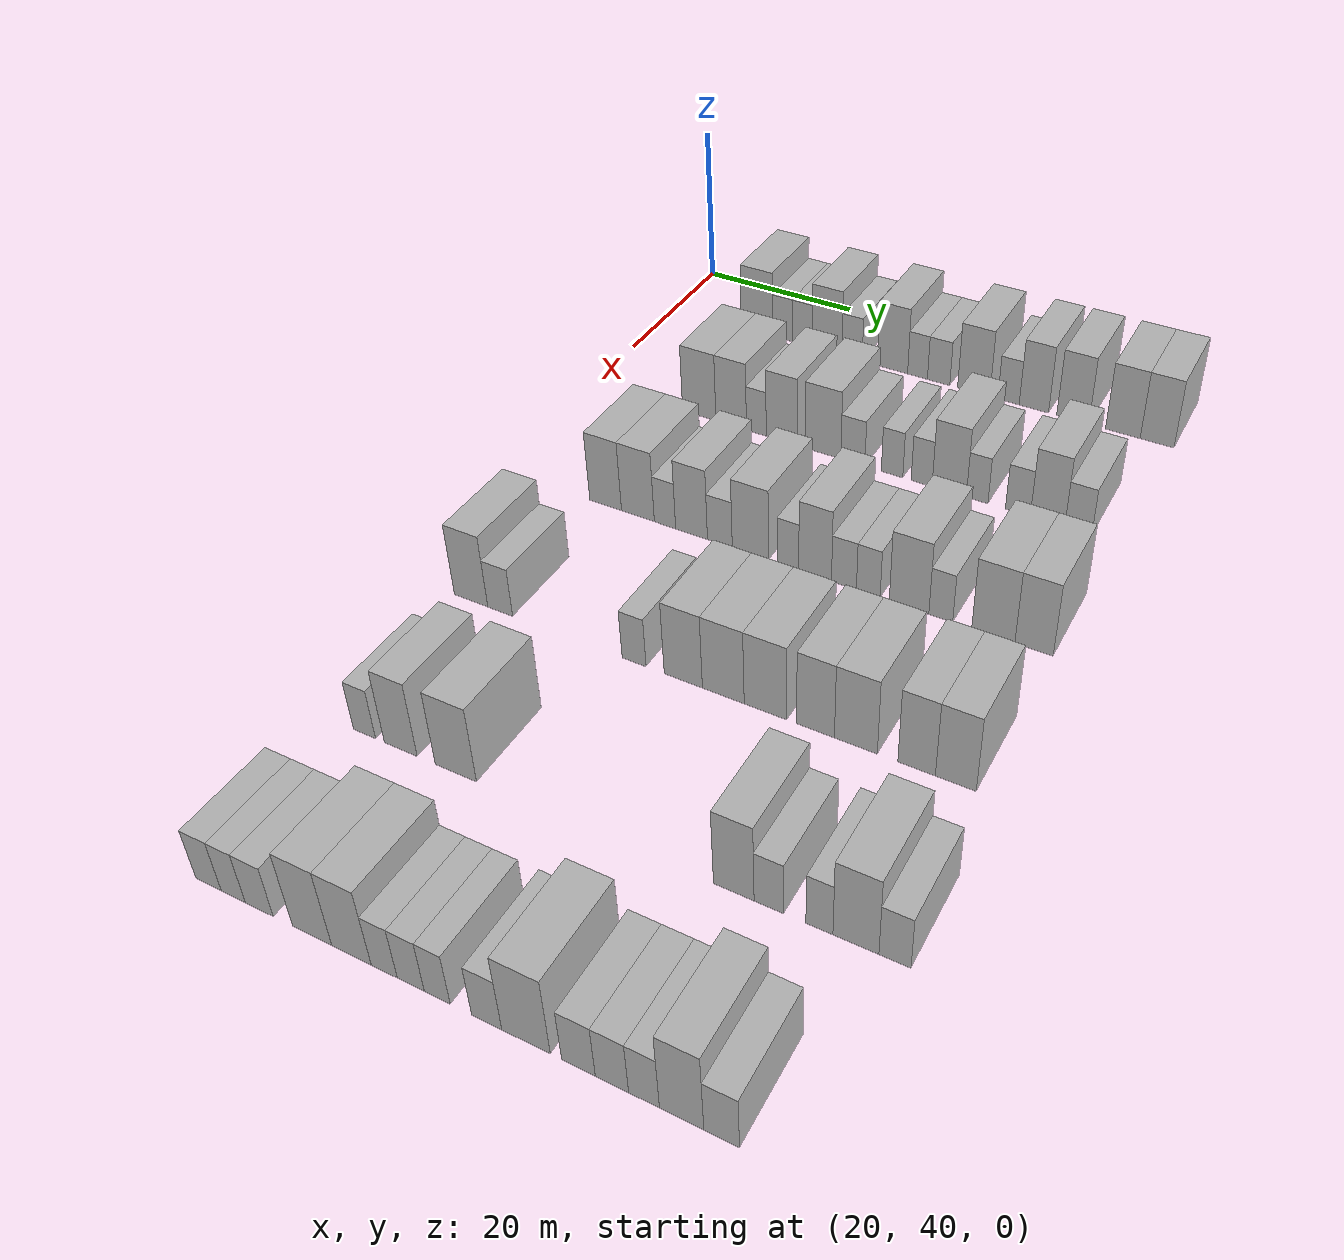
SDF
<sdf version="1.6">
 <world name="default">
  <model name="building_109">
   <static>1</static>
   <pose>25.0000 51.8928 0 0.000000 0.000000 0.000000</pose>
   <link name="link">
    <pose>0 0 4.50 0 0 0</pose>
    <collision name="collision"><geometry><box><size>10.0000 4.4329 9.0000</size></box></geometry></collision>
    <visual name="visual">
     <cast_shadows>0</cast_shadows>
     <geometry><box><size>10.0000 4.4329 9.0000</size></box></geometry>
     <material>
      <script>
       <uri>model://HANNAS_wall/materials/scripts</uri>
       <uri>model://HANNAS_wall/materials/textures</uri>
       <name>vrc/HANNAS_wall</name>
      </script>
     </material>
    </visual>
   </link>
  </model>
  <model name="building_110">
   <static>1</static>
   <pose>25.0000 55.4661 0 0.000000 0.000000 0.000000</pose>
   <link name="link">
    <pose>0 0 3.00 0 0 0</pose>
    <collision name="collision"><geometry><box><size>10.0000 2.7136 6.0000</size></box></geometry></collision>
    <visual name="visual">
     <cast_shadows>0</cast_shadows>
     <geometry><box><size>10.0000 2.7136 6.0000</size></box></geometry>
     <material>
      <script>
       <uri>model://HANNAS_wall/materials/scripts</uri>
       <uri>model://HANNAS_wall/materials/textures</uri>
       <name>vrc/HANNAS_wall</name>
      </script>
     </material>
    </visual>
   </link>
  </model>
  <model name="building_111">
   <static>1</static>
   <pose>25.0000 58.2137 0 0.000000 0.000000 0.000000</pose>
   <link name="link">
    <pose>0 0 3.00 0 0 0</pose>
    <collision name="collision"><geometry><box><size>10.0000 2.7817 6.0000</size></box></geometry></collision>
    <visual name="visual">
     <cast_shadows>0</cast_shadows>
     <geometry><box><size>10.0000 2.7817 6.0000</size></box></geometry>
     <material>
      <script>
       <uri>model://HANNAS_wall/materials/scripts</uri>
       <uri>model://HANNAS_wall/materials/textures</uri>
       <name>vrc/HANNAS_wall</name>
      </script>
     </material>
    </visual>
   </link>
  </model>
  <model name="building_112">
   <static>1</static>
   <pose>25.0000 61.6364 0 0.000000 0.000000 0.000000</pose>
   <link name="link">
    <pose>0 0 4.50 0 0 0</pose>
    <collision name="collision"><geometry><box><size>10.0000 4.0638 9.0000</size></box></geometry></collision>
    <visual name="visual">
     <cast_shadows>0</cast_shadows>
     <geometry><box><size>10.0000 4.0638 9.0000</size></box></geometry>
     <material>
      <script>
       <uri>model://HANNAS_wall/materials/scripts</uri>
       <uri>model://HANNAS_wall/materials/textures</uri>
       <name>vrc/HANNAS_wall</name>
      </script>
     </material>
    </visual>
   </link>
  </model>
  <model name="building_113">
   <static>1</static>
   <pose>25.0000 65.0336 0 0.000000 0.000000 0.000000</pose>
   <link name="link">
    <pose>0 0 3.00 0 0 0</pose>
    <collision name="collision"><geometry><box><size>10.0000 2.7306 6.0000</size></box></geometry></collision>
    <visual name="visual">
     <cast_shadows>0</cast_shadows>
     <geometry><box><size>10.0000 2.7306 6.0000</size></box></geometry>
     <material>
      <script>
       <uri>model://HANNAS_wall/materials/scripts</uri>
       <uri>model://HANNAS_wall/materials/textures</uri>
       <name>vrc/HANNAS_wall</name>
      </script>
     </material>
    </visual>
   </link>
  </model>
  <model name="building_114">
   <static>1</static>
   <pose>25.0000 70.4089 0 0.000000 0.000000 0.000000</pose>
   <link name="link">
    <pose>0 0 4.50 0 0 0</pose>
    <collision name="collision"><geometry><box><size>10.0000 4.0202 9.0000</size></box></geometry></collision>
    <visual name="visual">
     <cast_shadows>0</cast_shadows>
     <geometry><box><size>10.0000 4.0202 9.0000</size></box></geometry>
     <material>
      <script>
       <uri>model://HANNAS_wall/materials/scripts</uri>
       <uri>model://HANNAS_wall/materials/textures</uri>
       <name>vrc/HANNAS_wall</name>
      </script>
     </material>
    </visual>
   </link>
  </model>
  <model name="building_115">
   <static>1</static>
   <pose>25.0000 73.7105 0 0.000000 0.000000 0.000000</pose>
   <link name="link">
    <pose>0 0 3.00 0 0 0</pose>
    <collision name="collision"><geometry><box><size>10.0000 2.5829 6.0000</size></box></geometry></collision>
    <visual name="visual">
     <cast_shadows>0</cast_shadows>
     <geometry><box><size>10.0000 2.5829 6.0000</size></box></geometry>
     <material>
      <script>
       <uri>model://HANNAS_wall/materials/scripts</uri>
       <uri>model://HANNAS_wall/materials/textures</uri>
       <name>vrc/HANNAS_wall</name>
      </script>
     </material>
    </visual>
   </link>
  </model>
  <model name="building_116">
   <static>1</static>
   <pose>25.0000 76.4437 0 0.000000 0.000000 0.000000</pose>
   <link name="link">
    <pose>0 0 3.00 0 0 0</pose>
    <collision name="collision"><geometry><box><size>10.0000 2.8834 6.0000</size></box></geometry></collision>
    <visual name="visual">
     <cast_shadows>0</cast_shadows>
     <geometry><box><size>10.0000 2.8834 6.0000</size></box></geometry>
     <material>
      <script>
       <uri>model://HANNAS_wall/materials/scripts</uri>
       <uri>model://HANNAS_wall/materials/textures</uri>
       <name>vrc/HANNAS_wall</name>
      </script>
     </material>
    </visual>
   </link>
  </model>
  <model name="building_117">
   <static>1</static>
   <pose>25.0000 80.9212 0 0.000000 0.000000 0.000000</pose>
   <link name="link">
    <pose>0 0 4.50 0 0 0</pose>
    <collision name="collision"><geometry><box><size>10.0000 4.0717 9.0000</size></box></geometry></collision>
    <visual name="visual">
     <cast_shadows>0</cast_shadows>
     <geometry><box><size>10.0000 4.0717 9.0000</size></box></geometry>
     <material>
      <script>
       <uri>model://HANNAS_wall/materials/scripts</uri>
       <uri>model://HANNAS_wall/materials/textures</uri>
       <name>vrc/HANNAS_wall</name>
      </script>
     </material>
    </visual>
   </link>
  </model>
  <model name="building_118">
   <static>1</static>
   <pose>25.0000 85.2885 0 0.000000 0.000000 0.000000</pose>
   <link name="link">
    <pose>0 0 3.00 0 0 0</pose>
    <collision name="collision"><geometry><box><size>10.0000 2.6628 6.0000</size></box></geometry></collision>
    <visual name="visual">
     <cast_shadows>0</cast_shadows>
     <geometry><box><size>10.0000 2.6628 6.0000</size></box></geometry>
     <material>
      <script>
       <uri>model://HANNAS_wall/materials/scripts</uri>
       <uri>model://HANNAS_wall/materials/textures</uri>
       <name>vrc/HANNAS_wall</name>
      </script>
     </material>
    </visual>
   </link>
  </model>
  <model name="building_119">
   <static>1</static>
   <pose>25.0000 88.4306 0 0.000000 0.000000 0.000000</pose>
   <link name="link">
    <pose>0 0 4.50 0 0 0</pose>
    <collision name="collision"><geometry><box><size>10.0000 3.6213 9.0000</size></box></geometry></collision>
    <visual name="visual">
     <cast_shadows>0</cast_shadows>
     <geometry><box><size>10.0000 3.6213 9.0000</size></box></geometry>
     <material>
      <script>
       <uri>model://HANNAS_wall/materials/scripts</uri>
       <uri>model://HANNAS_wall/materials/textures</uri>
       <name>vrc/HANNAS_wall</name>
      </script>
     </material>
    </visual>
   </link>
  </model>
  <model name="building_120">
   <static>1</static>
   <pose>25.0000 93.1738 0 0.000000 0.000000 0.000000</pose>
   <link name="link">
    <pose>0 0 4.50 0 0 0</pose>
    <collision name="collision"><geometry><box><size>10.0000 3.8651 9.0000</size></box></geometry></collision>
    <visual name="visual">
     <cast_shadows>0</cast_shadows>
     <geometry><box><size>10.0000 3.8651 9.0000</size></box></geometry>
     <material>
      <script>
       <uri>model://HANNAS_wall/materials/scripts</uri>
       <uri>model://HANNAS_wall/materials/textures</uri>
       <name>vrc/HANNAS_wall</name>
      </script>
     </material>
    </visual>
   </link>
  </model>
  <model name="building_121">
   <static>1</static>
   <pose>25.0000 99.1429 0 0.000000 0.000000 0.000000</pose>
   <link name="link">
    <pose>0 0 4.50 0 0 0</pose>
    <collision name="collision"><geometry><box><size>10.0000 4.0731 9.0000</size></box></geometry></collision>
    <visual name="visual">
     <cast_shadows>0</cast_shadows>
     <geometry><box><size>10.0000 4.0731 9.0000</size></box></geometry>
     <material>
      <script>
       <uri>model://HANNAS_wall/materials/scripts</uri>
       <uri>model://HANNAS_wall/materials/textures</uri>
       <name>vrc/HANNAS_wall</name>
      </script>
     </material>
    </visual>
   </link>
  </model>
  <model name="building_122">
   <static>1</static>
   <pose>25.0000 103.1444 0 0.000000 0.000000 0.000000</pose>
   <link name="link">
    <pose>0 0 4.50 0 0 0</pose>
    <collision name="collision"><geometry><box><size>10.0000 3.9301 9.0000</size></box></geometry></collision>
    <visual name="visual">
     <cast_shadows>0</cast_shadows>
     <geometry><box><size>10.0000 3.9301 9.0000</size></box></geometry>
     <material>
      <script>
       <uri>model://HANNAS_wall/materials/scripts</uri>
       <uri>model://HANNAS_wall/materials/textures</uri>
       <name>vrc/HANNAS_wall</name>
      </script>
     </material>
    </visual>
   </link>
  </model>
  <model name="building_285">
   <static>1</static>
   <pose>44.0000 54.4289 0 0.000000 0.000000 0.000000</pose>
   <link name="link">
    <pose>0 0 4.50 0 0 0</pose>
    <collision name="collision"><geometry><box><size>10.0000 4.4301 9.0000</size></box></geometry></collision>
    <visual name="visual">
     <cast_shadows>0</cast_shadows>
     <geometry><box><size>10.0000 4.4301 9.0000</size></box></geometry>
     <material>
      <script>
       <uri>model://HANNAS_wall/materials/scripts</uri>
       <uri>model://HANNAS_wall/materials/textures</uri>
       <name>vrc/HANNAS_wall</name>
      </script>
     </material>
    </visual>
   </link>
  </model>
  <model name="building_286">
   <static>1</static>
   <pose>44.0000 58.6454 0 0.000000 0.000000 0.000000</pose>
   <link name="link">
    <pose>0 0 4.50 0 0 0</pose>
    <collision name="collision"><geometry><box><size>10.0000 4.0030 9.0000</size></box></geometry></collision>
    <visual name="visual">
     <cast_shadows>0</cast_shadows>
     <geometry><box><size>10.0000 4.0030 9.0000</size></box></geometry>
     <material>
      <script>
       <uri>model://HANNAS_wall/materials/scripts</uri>
       <uri>model://HANNAS_wall/materials/textures</uri>
       <name>vrc/HANNAS_wall</name>
      </script>
     </material>
    </visual>
   </link>
  </model>
  <model name="building_287">
   <static>1</static>
   <pose>44.0000 61.9215 0 0.000000 0.000000 0.000000</pose>
   <link name="link">
    <pose>0 0 3.00 0 0 0</pose>
    <collision name="collision"><geometry><box><size>10.0000 2.5492 6.0000</size></box></geometry></collision>
    <visual name="visual">
     <cast_shadows>0</cast_shadows>
     <geometry><box><size>10.0000 2.5492 6.0000</size></box></geometry>
     <material>
      <script>
       <uri>model://HANNAS_wall/materials/scripts</uri>
       <uri>model://HANNAS_wall/materials/textures</uri>
       <name>vrc/HANNAS_wall</name>
      </script>
     </material>
    </visual>
   </link>
  </model>
  <model name="building_288">
   <static>1</static>
   <pose>44.0000 65.1652 0 0.000000 0.000000 0.000000</pose>
   <link name="link">
    <pose>0 0 4.50 0 0 0</pose>
    <collision name="collision"><geometry><box><size>10.0000 3.9383 9.0000</size></box></geometry></collision>
    <visual name="visual">
     <cast_shadows>0</cast_shadows>
     <geometry><box><size>10.0000 3.9383 9.0000</size></box></geometry>
     <material>
      <script>
       <uri>model://HANNAS_wall/materials/scripts</uri>
       <uri>model://HANNAS_wall/materials/textures</uri>
       <name>vrc/HANNAS_wall</name>
      </script>
     </material>
    </visual>
   </link>
  </model>
  <model name="building_289">
   <static>1</static>
   <pose>44.0000 70.3622 0 0.000000 0.000000 0.000000</pose>
   <link name="link">
    <pose>0 0 4.50 0 0 0</pose>
    <collision name="collision"><geometry><box><size>10.0000 4.4557 9.0000</size></box></geometry></collision>
    <visual name="visual">
     <cast_shadows>0</cast_shadows>
     <geometry><box><size>10.0000 4.4557 9.0000</size></box></geometry>
     <material>
      <script>
       <uri>model://HANNAS_wall/materials/scripts</uri>
       <uri>model://HANNAS_wall/materials/textures</uri>
       <name>vrc/HANNAS_wall</name>
      </script>
     </material>
    </visual>
   </link>
  </model>
  <model name="building_290">
   <static>1</static>
   <pose>44.0000 74.0741 0 0.000000 0.000000 0.000000</pose>
   <link name="link">
    <pose>0 0 3.00 0 0 0</pose>
    <collision name="collision"><geometry><box><size>10.0000 2.9681 6.0000</size></box></geometry></collision>
    <visual name="visual">
     <cast_shadows>0</cast_shadows>
     <geometry><box><size>10.0000 2.9681 6.0000</size></box></geometry>
     <material>
      <script>
       <uri>model://HANNAS_wall/materials/scripts</uri>
       <uri>model://HANNAS_wall/materials/textures</uri>
       <name>vrc/HANNAS_wall</name>
      </script>
     </material>
    </visual>
   </link>
  </model>
  <model name="building_291">
   <static>1</static>
   <pose>44.0000 78.8497 0 0.000000 0.000000 0.000000</pose>
   <link name="link">
    <pose>0 0 3.00 0 0 0</pose>
    <collision name="collision"><geometry><box><size>10.0000 2.5831 6.0000</size></box></geometry></collision>
    <visual name="visual">
     <cast_shadows>0</cast_shadows>
     <geometry><box><size>10.0000 2.5831 6.0000</size></box></geometry>
     <material>
      <script>
       <uri>model://HANNAS_wall/materials/scripts</uri>
       <uri>model://HANNAS_wall/materials/textures</uri>
       <name>vrc/HANNAS_wall</name>
      </script>
     </material>
    </visual>
   </link>
  </model>
  <model name="building_292">
   <static>1</static>
   <pose>44.0000 82.3801 0 0.000000 0.000000 0.000000</pose>
   <link name="link">
    <pose>0 0 3.00 0 0 0</pose>
    <collision name="collision"><geometry><box><size>10.0000 2.4777 6.0000</size></box></geometry></collision>
    <visual name="visual">
     <cast_shadows>0</cast_shadows>
     <geometry><box><size>10.0000 2.4777 6.0000</size></box></geometry>
     <material>
      <script>
       <uri>model://HANNAS_wall/materials/scripts</uri>
       <uri>model://HANNAS_wall/materials/textures</uri>
       <name>vrc/HANNAS_wall</name>
      </script>
     </material>
    </visual>
   </link>
  </model>
  <model name="building_293">
   <static>1</static>
   <pose>44.0000 85.6243 0 0.000000 0.000000 0.000000</pose>
   <link name="link">
    <pose>0 0 4.50 0 0 0</pose>
    <collision name="collision"><geometry><box><size>10.0000 4.0107 9.0000</size></box></geometry></collision>
    <visual name="visual">
     <cast_shadows>0</cast_shadows>
     <geometry><box><size>10.0000 4.0107 9.0000</size></box></geometry>
     <material>
      <script>
       <uri>model://HANNAS_wall/materials/scripts</uri>
       <uri>model://HANNAS_wall/materials/textures</uri>
       <name>vrc/HANNAS_wall</name>
      </script>
     </material>
    </visual>
   </link>
  </model>
  <model name="building_294">
   <static>1</static>
   <pose>44.0000 88.8751 0 0.000000 0.000000 0.000000</pose>
   <link name="link">
    <pose>0 0 3.00 0 0 0</pose>
    <collision name="collision"><geometry><box><size>10.0000 2.4907 6.0000</size></box></geometry></collision>
    <visual name="visual">
     <cast_shadows>0</cast_shadows>
     <geometry><box><size>10.0000 2.4907 6.0000</size></box></geometry>
     <material>
      <script>
       <uri>model://HANNAS_wall/materials/scripts</uri>
       <uri>model://HANNAS_wall/materials/textures</uri>
       <name>vrc/HANNAS_wall</name>
      </script>
     </material>
    </visual>
   </link>
  </model>
  <model name="building_295">
   <static>1</static>
   <pose>44.0000 93.5214 0 0.000000 0.000000 0.000000</pose>
   <link name="link">
    <pose>0 0 3.00 0 0 0</pose>
    <collision name="collision"><geometry><box><size>10.0000 2.8019 6.0000</size></box></geometry></collision>
    <visual name="visual">
     <cast_shadows>0</cast_shadows>
     <geometry><box><size>10.0000 2.8019 6.0000</size></box></geometry>
     <material>
      <script>
       <uri>model://HANNAS_wall/materials/scripts</uri>
       <uri>model://HANNAS_wall/materials/textures</uri>
       <name>vrc/HANNAS_wall</name>
      </script>
     </material>
    </visual>
   </link>
  </model>
  <model name="building_296">
   <static>1</static>
   <pose>44.0000 96.8413 0 0.000000 0.000000 0.000000</pose>
   <link name="link">
    <pose>0 0 4.50 0 0 0</pose>
    <collision name="collision"><geometry><box><size>10.0000 3.8381 9.0000</size></box></geometry></collision>
    <visual name="visual">
     <cast_shadows>0</cast_shadows>
     <geometry><box><size>10.0000 3.8381 9.0000</size></box></geometry>
     <material>
      <script>
       <uri>model://HANNAS_wall/materials/scripts</uri>
       <uri>model://HANNAS_wall/materials/textures</uri>
       <name>vrc/HANNAS_wall</name>
      </script>
     </material>
    </visual>
   </link>
  </model>
  <model name="building_297">
   <static>1</static>
   <pose>44.0000 100.2492 0 0.000000 0.000000 0.000000</pose>
   <link name="link">
    <pose>0 0 3.00 0 0 0</pose>
    <collision name="collision"><geometry><box><size>10.0000 2.9777 6.0000</size></box></geometry></collision>
    <visual name="visual">
     <cast_shadows>0</cast_shadows>
     <geometry><box><size>10.0000 2.9777 6.0000</size></box></geometry>
     <material>
      <script>
       <uri>model://HANNAS_wall/materials/scripts</uri>
       <uri>model://HANNAS_wall/materials/textures</uri>
       <name>vrc/HANNAS_wall</name>
      </script>
     </material>
    </visual>
   </link>
  </model>
  <model name="building_449">
   <static>1</static>
   <pose>63.0000 53.7005 0 0.000000 0.000000 0.000000</pose>
   <link name="link">
    <pose>0 0 4.50 0 0 0</pose>
    <collision name="collision"><geometry><box><size>10.0000 4.0137 9.0000</size></box></geometry></collision>
    <visual name="visual">
     <cast_shadows>0</cast_shadows>
     <geometry><box><size>10.0000 4.0137 9.0000</size></box></geometry>
     <material>
      <script>
       <uri>model://HANNAS_wall/materials/scripts</uri>
       <uri>model://HANNAS_wall/materials/textures</uri>
       <name>vrc/HANNAS_wall</name>
      </script>
     </material>
    </visual>
   </link>
  </model>
  <model name="building_450">
   <static>1</static>
   <pose>63.0000 57.7499 0 0.000000 0.000000 0.000000</pose>
   <link name="link">
    <pose>0 0 4.50 0 0 0</pose>
    <collision name="collision"><geometry><box><size>10.0000 4.0850 9.0000</size></box></geometry></collision>
    <visual name="visual">
     <cast_shadows>0</cast_shadows>
     <geometry><box><size>10.0000 4.0850 9.0000</size></box></geometry>
     <material>
      <script>
       <uri>model://HANNAS_wall/materials/scripts</uri>
       <uri>model://HANNAS_wall/materials/textures</uri>
       <name>vrc/HANNAS_wall</name>
      </script>
     </material>
    </visual>
   </link>
  </model>
  <model name="building_451">
   <static>1</static>
   <pose>63.0000 61.0975 0 0.000000 0.000000 0.000000</pose>
   <link name="link">
    <pose>0 0 3.00 0 0 0</pose>
    <collision name="collision"><geometry><box><size>10.0000 2.6103 6.0000</size></box></geometry></collision>
    <visual name="visual">
     <cast_shadows>0</cast_shadows>
     <geometry><box><size>10.0000 2.6103 6.0000</size></box></geometry>
     <material>
      <script>
       <uri>model://HANNAS_wall/materials/scripts</uri>
       <uri>model://HANNAS_wall/materials/textures</uri>
       <name>vrc/HANNAS_wall</name>
      </script>
     </material>
    </visual>
   </link>
  </model>
  <model name="building_452">
   <static>1</static>
   <pose>63.0000 64.3244 0 0.000000 0.000000 0.000000</pose>
   <link name="link">
    <pose>0 0 4.50 0 0 0</pose>
    <collision name="collision"><geometry><box><size>10.0000 3.8435 9.0000</size></box></geometry></collision>
    <visual name="visual">
     <cast_shadows>0</cast_shadows>
     <geometry><box><size>10.0000 3.8435 9.0000</size></box></geometry>
     <material>
      <script>
       <uri>model://HANNAS_wall/materials/scripts</uri>
       <uri>model://HANNAS_wall/materials/textures</uri>
       <name>vrc/HANNAS_wall</name>
      </script>
     </material>
    </visual>
   </link>
  </model>
  <model name="building_453">
   <static>1</static>
   <pose>63.0000 67.7242 0 0.000000 0.000000 0.000000</pose>
   <link name="link">
    <pose>0 0 3.00 0 0 0</pose>
    <collision name="collision"><geometry><box><size>10.0000 2.9560 6.0000</size></box></geometry></collision>
    <visual name="visual">
     <cast_shadows>0</cast_shadows>
     <geometry><box><size>10.0000 2.9560 6.0000</size></box></geometry>
     <material>
      <script>
       <uri>model://HANNAS_wall/materials/scripts</uri>
       <uri>model://HANNAS_wall/materials/textures</uri>
       <name>vrc/HANNAS_wall</name>
      </script>
     </material>
    </visual>
   </link>
  </model>
  <model name="building_454">
   <static>1</static>
   <pose>63.0000 71.3263 0 0.000000 0.000000 0.000000</pose>
   <link name="link">
    <pose>0 0 4.50 0 0 0</pose>
    <collision name="collision"><geometry><box><size>10.0000 4.2482 9.0000</size></box></geometry></collision>
    <visual name="visual">
     <cast_shadows>0</cast_shadows>
     <geometry><box><size>10.0000 4.2482 9.0000</size></box></geometry>
     <material>
      <script>
       <uri>model://HANNAS_wall/materials/scripts</uri>
       <uri>model://HANNAS_wall/materials/textures</uri>
       <name>vrc/HANNAS_wall</name>
      </script>
     </material>
    </visual>
   </link>
  </model>
  <model name="building_455">
   <static>1</static>
   <pose>63.0000 75.6858 0 0.000000 0.000000 0.000000</pose>
   <link name="link">
    <pose>0 0 3.00 0 0 0</pose>
    <collision name="collision"><geometry><box><size>10.0000 2.4708 6.0000</size></box></geometry></collision>
    <visual name="visual">
     <cast_shadows>0</cast_shadows>
     <geometry><box><size>10.0000 2.4708 6.0000</size></box></geometry>
     <material>
      <script>
       <uri>model://HANNAS_wall/materials/scripts</uri>
       <uri>model://HANNAS_wall/materials/textures</uri>
       <name>vrc/HANNAS_wall</name>
      </script>
     </material>
    </visual>
   </link>
  </model>
  <model name="building_456">
   <static>1</static>
   <pose>63.0000 78.7758 0 0.000000 0.000000 0.000000</pose>
   <link name="link">
    <pose>0 0 4.50 0 0 0</pose>
    <collision name="collision"><geometry><box><size>10.0000 3.7091 9.0000</size></box></geometry></collision>
    <visual name="visual">
     <cast_shadows>0</cast_shadows>
     <geometry><box><size>10.0000 3.7091 9.0000</size></box></geometry>
     <material>
      <script>
       <uri>model://HANNAS_wall/materials/scripts</uri>
       <uri>model://HANNAS_wall/materials/textures</uri>
       <name>vrc/HANNAS_wall</name>
      </script>
     </material>
    </visual>
   </link>
  </model>
  <model name="building_457">
   <static>1</static>
   <pose>63.0000 82.0206 0 0.000000 0.000000 0.000000</pose>
   <link name="link">
    <pose>0 0 3.00 0 0 0</pose>
    <collision name="collision"><geometry><box><size>10.0000 2.7806 6.0000</size></box></geometry></collision>
    <visual name="visual">
     <cast_shadows>0</cast_shadows>
     <geometry><box><size>10.0000 2.7806 6.0000</size></box></geometry>
     <material>
      <script>
       <uri>model://HANNAS_wall/materials/scripts</uri>
       <uri>model://HANNAS_wall/materials/textures</uri>
       <name>vrc/HANNAS_wall</name>
      </script>
     </material>
    </visual>
   </link>
  </model>
  <model name="building_458">
   <static>1</static>
   <pose>63.0000 84.7188 0 0.000000 0.000000 0.000000</pose>
   <link name="link">
    <pose>0 0 3.00 0 0 0</pose>
    <collision name="collision"><geometry><box><size>10.0000 2.6158 6.0000</size></box></geometry></collision>
    <visual name="visual">
     <cast_shadows>0</cast_shadows>
     <geometry><box><size>10.0000 2.6158 6.0000</size></box></geometry>
     <material>
      <script>
       <uri>model://HANNAS_wall/materials/scripts</uri>
       <uri>model://HANNAS_wall/materials/textures</uri>
       <name>vrc/HANNAS_wall</name>
      </script>
     </material>
    </visual>
   </link>
  </model>
  <model name="building_459">
   <static>1</static>
   <pose>63.0000 89.1579 0 0.000000 0.000000 0.000000</pose>
   <link name="link">
    <pose>0 0 4.50 0 0 0</pose>
    <collision name="collision"><geometry><box><size>10.0000 4.2625 9.0000</size></box></geometry></collision>
    <visual name="visual">
     <cast_shadows>0</cast_shadows>
     <geometry><box><size>10.0000 4.2625 9.0000</size></box></geometry>
     <material>
      <script>
       <uri>model://HANNAS_wall/materials/scripts</uri>
       <uri>model://HANNAS_wall/materials/textures</uri>
       <name>vrc/HANNAS_wall</name>
      </script>
     </material>
    </visual>
   </link>
  </model>
  <model name="building_460">
   <static>1</static>
   <pose>63.0000 92.5585 0 0.000000 0.000000 0.000000</pose>
   <link name="link">
    <pose>0 0 3.00 0 0 0</pose>
    <collision name="collision"><geometry><box><size>10.0000 2.5386 6.0000</size></box></geometry></collision>
    <visual name="visual">
     <cast_shadows>0</cast_shadows>
     <geometry><box><size>10.0000 2.5386 6.0000</size></box></geometry>
     <material>
      <script>
       <uri>model://HANNAS_wall/materials/scripts</uri>
       <uri>model://HANNAS_wall/materials/textures</uri>
       <name>vrc/HANNAS_wall</name>
      </script>
     </material>
    </visual>
   </link>
  </model>
  <model name="building_461">
   <static>1</static>
   <pose>63.0000 98.0519 0 0.000000 0.000000 0.000000</pose>
   <link name="link">
    <pose>0 0 4.50 0 0 0</pose>
    <collision name="collision"><geometry><box><size>10.0000 4.4484 9.0000</size></box></geometry></collision>
    <visual name="visual">
     <cast_shadows>0</cast_shadows>
     <geometry><box><size>10.0000 4.4484 9.0000</size></box></geometry>
     <material>
      <script>
       <uri>model://HANNAS_wall/materials/scripts</uri>
       <uri>model://HANNAS_wall/materials/textures</uri>
       <name>vrc/HANNAS_wall</name>
      </script>
     </material>
    </visual>
   </link>
  </model>
  <model name="building_462">
   <static>1</static>
   <pose>63.0000 102.2227 0 0.000000 0.000000 0.000000</pose>
   <link name="link">
    <pose>0 0 4.50 0 0 0</pose>
    <collision name="collision"><geometry><box><size>10.0000 3.8931 9.0000</size></box></geometry></collision>
    <visual name="visual">
     <cast_shadows>0</cast_shadows>
     <geometry><box><size>10.0000 3.8931 9.0000</size></box></geometry>
     <material>
      <script>
       <uri>model://HANNAS_wall/materials/scripts</uri>
       <uri>model://HANNAS_wall/materials/textures</uri>
       <name>vrc/HANNAS_wall</name>
      </script>
     </material>
    </visual>
   </link>
  </model>
  <model name="building_619">
   <static>1</static>
   <pose>82.0000 49.9514 0 0.000000 0.000000 0.000000</pose>
   <link name="link">
    <pose>0 0 4.50 0 0 0</pose>
    <collision name="collision"><geometry><box><size>10.0000 4.0743 9.0000</size></box></geometry></collision>
    <visual name="visual">
     <cast_shadows>0</cast_shadows>
     <geometry><box><size>10.0000 4.0743 9.0000</size></box></geometry>
     <material>
      <script>
       <uri>model://HANNAS_wall/materials/scripts</uri>
       <uri>model://HANNAS_wall/materials/textures</uri>
       <name>vrc/HANNAS_wall</name>
      </script>
     </material>
    </visual>
   </link>
  </model>
  <model name="building_620">
   <static>1</static>
   <pose>82.0000 53.4758 0 0.000000 0.000000 0.000000</pose>
   <link name="link">
    <pose>0 0 3.00 0 0 0</pose>
    <collision name="collision"><geometry><box><size>10.0000 2.9744 6.0000</size></box></geometry></collision>
    <visual name="visual">
     <cast_shadows>0</cast_shadows>
     <geometry><box><size>10.0000 2.9744 6.0000</size></box></geometry>
     <material>
      <script>
       <uri>model://HANNAS_wall/materials/scripts</uri>
       <uri>model://HANNAS_wall/materials/textures</uri>
       <name>vrc/HANNAS_wall</name>
      </script>
     </material>
    </visual>
   </link>
  </model>
  <model name="building_621">
   <static>1</static>
   <pose>82.0000 68.9594 0 0.000000 0.000000 0.000000</pose>
   <link name="link">
    <pose>0 0 3.00 0 0 0</pose>
    <collision name="collision"><geometry><box><size>10.0000 2.6643 6.0000</size></box></geometry></collision>
    <visual name="visual">
     <cast_shadows>0</cast_shadows>
     <geometry><box><size>10.0000 2.6643 6.0000</size></box></geometry>
     <material>
      <script>
       <uri>model://HANNAS_wall/materials/scripts</uri>
       <uri>model://HANNAS_wall/materials/textures</uri>
       <name>vrc/HANNAS_wall</name>
      </script>
     </material>
    </visual>
   </link>
  </model>
  <model name="building_622">
   <static>1</static>
   <pose>82.0000 74.3591 0 0.000000 0.000000 0.000000</pose>
   <link name="link">
    <pose>0 0 4.50 0 0 0</pose>
    <collision name="collision"><geometry><box><size>10.0000 4.1350 9.0000</size></box></geometry></collision>
    <visual name="visual">
     <cast_shadows>0</cast_shadows>
     <geometry><box><size>10.0000 4.1350 9.0000</size></box></geometry>
     <material>
      <script>
       <uri>model://HANNAS_wall/materials/scripts</uri>
       <uri>model://HANNAS_wall/materials/textures</uri>
       <name>vrc/HANNAS_wall</name>
      </script>
     </material>
    </visual>
   </link>
  </model>
  <model name="building_623">
   <static>1</static>
   <pose>82.0000 78.6463 0 0.000000 0.000000 0.000000</pose>
   <link name="link">
    <pose>0 0 4.50 0 0 0</pose>
    <collision name="collision"><geometry><box><size>10.0000 4.4393 9.0000</size></box></geometry></collision>
    <visual name="visual">
     <cast_shadows>0</cast_shadows>
     <geometry><box><size>10.0000 4.4393 9.0000</size></box></geometry>
     <material>
      <script>
       <uri>model://HANNAS_wall/materials/scripts</uri>
       <uri>model://HANNAS_wall/materials/textures</uri>
       <name>vrc/HANNAS_wall</name>
      </script>
     </material>
    </visual>
   </link>
  </model>
  <model name="building_624">
   <static>1</static>
   <pose>82.0000 83.0802 0 0.000000 0.000000 0.000000</pose>
   <link name="link">
    <pose>0 0 4.50 0 0 0</pose>
    <collision name="collision"><geometry><box><size>10.0000 4.4286 9.0000</size></box></geometry></collision>
    <visual name="visual">
     <cast_shadows>0</cast_shadows>
     <geometry><box><size>10.0000 4.4286 9.0000</size></box></geometry>
     <material>
      <script>
       <uri>model://HANNAS_wall/materials/scripts</uri>
       <uri>model://HANNAS_wall/materials/textures</uri>
       <name>vrc/HANNAS_wall</name>
      </script>
     </material>
    </visual>
   </link>
  </model>
  <model name="building_625">
   <static>1</static>
   <pose>82.0000 88.2042 0 0.000000 0.000000 0.000000</pose>
   <link name="link">
    <pose>0 0 4.50 0 0 0</pose>
    <collision name="collision"><geometry><box><size>10.0000 3.8193 9.0000</size></box></geometry></collision>
    <visual name="visual">
     <cast_shadows>0</cast_shadows>
     <geometry><box><size>10.0000 3.8193 9.0000</size></box></geometry>
     <material>
      <script>
       <uri>model://HANNAS_wall/materials/scripts</uri>
       <uri>model://HANNAS_wall/materials/textures</uri>
       <name>vrc/HANNAS_wall</name>
      </script>
     </material>
    </visual>
   </link>
  </model>
  <model name="building_626">
   <static>1</static>
   <pose>82.0000 92.2409 0 0.000000 0.000000 0.000000</pose>
   <link name="link">
    <pose>0 0 4.50 0 0 0</pose>
    <collision name="collision"><geometry><box><size>10.0000 4.2542 9.0000</size></box></geometry></collision>
    <visual name="visual">
     <cast_shadows>0</cast_shadows>
     <geometry><box><size>10.0000 4.2542 9.0000</size></box></geometry>
     <material>
      <script>
       <uri>model://HANNAS_wall/materials/scripts</uri>
       <uri>model://HANNAS_wall/materials/textures</uri>
       <name>vrc/HANNAS_wall</name>
      </script>
     </material>
    </visual>
   </link>
  </model>
  <model name="building_627">
   <static>1</static>
   <pose>82.0000 98.1693 0 0.000000 0.000000 0.000000</pose>
   <link name="link">
    <pose>0 0 4.50 0 0 0</pose>
    <collision name="collision"><geometry><box><size>10.0000 3.6025 9.0000</size></box></geometry></collision>
    <visual name="visual">
     <cast_shadows>0</cast_shadows>
     <geometry><box><size>10.0000 3.6025 9.0000</size></box></geometry>
     <material>
      <script>
       <uri>model://HANNAS_wall/materials/scripts</uri>
       <uri>model://HANNAS_wall/materials/textures</uri>
       <name>vrc/HANNAS_wall</name>
      </script>
     </material>
    </visual>
   </link>
  </model>
  <model name="building_628">
   <static>1</static>
   <pose>82.0000 101.8954 0 0.000000 0.000000 0.000000</pose>
   <link name="link">
    <pose>0 0 4.50 0 0 0</pose>
    <collision name="collision"><geometry><box><size>10.0000 3.8498 9.0000</size></box></geometry></collision>
    <visual name="visual">
     <cast_shadows>0</cast_shadows>
     <geometry><box><size>10.0000 3.8498 9.0000</size></box></geometry>
     <material>
      <script>
       <uri>model://HANNAS_wall/materials/scripts</uri>
       <uri>model://HANNAS_wall/materials/textures</uri>
       <name>vrc/HANNAS_wall</name>
      </script>
     </material>
    </visual>
   </link>
  </model>
  <model name="building_795">
   <static>1</static>
   <pose>101.0000 52.0817 0 0.000000 0.000000 0.000000</pose>
   <link name="link">
    <pose>0 0 3.00 0 0 0</pose>
    <collision name="collision"><geometry><box><size>10.0000 2.5352 6.0000</size></box></geometry></collision>
    <visual name="visual">
     <cast_shadows>0</cast_shadows>
     <geometry><box><size>10.0000 2.5352 6.0000</size></box></geometry>
     <material>
      <script>
       <uri>model://HANNAS_wall/materials/scripts</uri>
       <uri>model://HANNAS_wall/materials/textures</uri>
       <name>vrc/HANNAS_wall</name>
      </script>
     </material>
    </visual>
   </link>
  </model>
  <model name="building_796">
   <static>1</static>
   <pose>101.0000 56.1830 0 0.000000 0.000000 0.000000</pose>
   <link name="link">
    <pose>0 0 4.50 0 0 0</pose>
    <collision name="collision"><geometry><box><size>10.0000 3.6675 9.0000</size></box></geometry></collision>
    <visual name="visual">
     <cast_shadows>0</cast_shadows>
     <geometry><box><size>10.0000 3.6675 9.0000</size></box></geometry>
     <material>
      <script>
       <uri>model://HANNAS_wall/materials/scripts</uri>
       <uri>model://HANNAS_wall/materials/textures</uri>
       <name>vrc/HANNAS_wall</name>
      </script>
     </material>
    </visual>
   </link>
  </model>
  <model name="building_797">
   <static>1</static>
   <pose>101.0000 62.2505 0 0.000000 0.000000 0.000000</pose>
   <link name="link">
    <pose>0 0 4.50 0 0 0</pose>
    <collision name="collision"><geometry><box><size>10.0000 4.4675 9.0000</size></box></geometry></collision>
    <visual name="visual">
     <cast_shadows>0</cast_shadows>
     <geometry><box><size>10.0000 4.4675 9.0000</size></box></geometry>
     <material>
      <script>
       <uri>model://HANNAS_wall/materials/scripts</uri>
       <uri>model://HANNAS_wall/materials/textures</uri>
       <name>vrc/HANNAS_wall</name>
      </script>
     </material>
    </visual>
   </link>
  </model>
  <model name="building_798">
   <static>1</static>
   <pose>101.0000 90.1481 0 0.000000 0.000000 0.000000</pose>
   <link name="link">
    <pose>0 0 4.50 0 0 0</pose>
    <collision name="collision"><geometry><box><size>10.0000 3.7759 9.0000</size></box></geometry></collision>
    <visual name="visual">
     <cast_shadows>0</cast_shadows>
     <geometry><box><size>10.0000 3.7759 9.0000</size></box></geometry>
     <material>
      <script>
       <uri>model://HANNAS_wall/materials/scripts</uri>
       <uri>model://HANNAS_wall/materials/textures</uri>
       <name>vrc/HANNAS_wall</name>
      </script>
     </material>
    </visual>
   </link>
  </model>
  <model name="building_799">
   <static>1</static>
   <pose>101.0000 93.3846 0 0.000000 0.000000 0.000000</pose>
   <link name="link">
    <pose>0 0 3.00 0 0 0</pose>
    <collision name="collision"><geometry><box><size>10.0000 2.6971 6.0000</size></box></geometry></collision>
    <visual name="visual">
     <cast_shadows>0</cast_shadows>
     <geometry><box><size>10.0000 2.6971 6.0000</size></box></geometry>
     <material>
      <script>
       <uri>model://HANNAS_wall/materials/scripts</uri>
       <uri>model://HANNAS_wall/materials/textures</uri>
       <name>vrc/HANNAS_wall</name>
      </script>
     </material>
    </visual>
   </link>
  </model>
  <model name="building_800">
   <static>1</static>
   <pose>101.0000 97.9346 0 0.000000 0.000000 0.000000</pose>
   <link name="link">
    <pose>0 0 3.00 0 0 0</pose>
    <collision name="collision"><geometry><box><size>10.0000 2.4030 6.0000</size></box></geometry></collision>
    <visual name="visual">
     <cast_shadows>0</cast_shadows>
     <geometry><box><size>10.0000 2.4030 6.0000</size></box></geometry>
     <material>
      <script>
       <uri>model://HANNAS_wall/materials/scripts</uri>
       <uri>model://HANNAS_wall/materials/textures</uri>
       <name>vrc/HANNAS_wall</name>
      </script>
     </material>
    </visual>
   </link>
  </model>
  <model name="building_801">
   <static>1</static>
   <pose>101.0000 101.1423 0 0.000000 0.000000 0.000000</pose>
   <link name="link">
    <pose>0 0 4.50 0 0 0</pose>
    <collision name="collision"><geometry><box><size>10.0000 4.0124 9.0000</size></box></geometry></collision>
    <visual name="visual">
     <cast_shadows>0</cast_shadows>
     <geometry><box><size>10.0000 4.0124 9.0000</size></box></geometry>
     <material>
      <script>
       <uri>model://HANNAS_wall/materials/scripts</uri>
       <uri>model://HANNAS_wall/materials/textures</uri>
       <name>vrc/HANNAS_wall</name>
      </script>
     </material>
    </visual>
   </link>
  </model>
  <model name="building_802">
   <static>1</static>
   <pose>101.0000 104.5218 0 0.000000 0.000000 0.000000</pose>
   <link name="link">
    <pose>0 0 3.00 0 0 0</pose>
    <collision name="collision"><geometry><box><size>10.0000 2.7466 6.0000</size></box></geometry></collision>
    <visual name="visual">
     <cast_shadows>0</cast_shadows>
     <geometry><box><size>10.0000 2.7466 6.0000</size></box></geometry>
     <material>
      <script>
       <uri>model://HANNAS_wall/materials/scripts</uri>
       <uri>model://HANNAS_wall/materials/textures</uri>
       <name>vrc/HANNAS_wall</name>
      </script>
     </material>
    </visual>
   </link>
  </model>
  <model name="building_950">
   <static>1</static>
   <pose>120.0000 51.4793 0 0.000000 0.000000 0.000000</pose>
   <link name="link">
    <pose>0 0 3.00 0 0 0</pose>
    <collision name="collision"><geometry><box><size>10.0000 2.7453 6.0000</size></box></geometry></collision>
    <visual name="visual">
     <cast_shadows>0</cast_shadows>
     <geometry><box><size>10.0000 2.7453 6.0000</size></box></geometry>
     <material>
      <script>
       <uri>model://HANNAS_wall/materials/scripts</uri>
       <uri>model://HANNAS_wall/materials/textures</uri>
       <name>vrc/HANNAS_wall</name>
      </script>
     </material>
    </visual>
   </link>
  </model>
  <model name="building_951">
   <static>1</static>
   <pose>120.0000 54.1419 0 0.000000 0.000000 0.000000</pose>
   <link name="link">
    <pose>0 0 3.00 0 0 0</pose>
    <collision name="collision"><geometry><box><size>10.0000 2.5797 6.0000</size></box></geometry></collision>
    <visual name="visual">
     <cast_shadows>0</cast_shadows>
     <geometry><box><size>10.0000 2.5797 6.0000</size></box></geometry>
     <material>
      <script>
       <uri>model://HANNAS_wall/materials/scripts</uri>
       <uri>model://HANNAS_wall/materials/textures</uri>
       <name>vrc/HANNAS_wall</name>
      </script>
     </material>
    </visual>
   </link>
  </model>
  <model name="building_952">
   <static>1</static>
   <pose>120.0000 56.9024 0 0.000000 0.000000 0.000000</pose>
   <link name="link">
    <pose>0 0 3.00 0 0 0</pose>
    <collision name="collision"><geometry><box><size>10.0000 2.9413 6.0000</size></box></geometry></collision>
    <visual name="visual">
     <cast_shadows>0</cast_shadows>
     <geometry><box><size>10.0000 2.9413 6.0000</size></box></geometry>
     <material>
      <script>
       <uri>model://HANNAS_wall/materials/scripts</uri>
       <uri>model://HANNAS_wall/materials/textures</uri>
       <name>vrc/HANNAS_wall</name>
      </script>
     </material>
    </visual>
   </link>
  </model>
  <model name="building_953">
   <static>1</static>
   <pose>120.0000 62.3700 0 0.000000 0.000000 0.000000</pose>
   <link name="link">
    <pose>0 0 4.50 0 0 0</pose>
    <collision name="collision"><geometry><box><size>10.0000 3.9940 9.0000</size></box></geometry></collision>
    <visual name="visual">
     <cast_shadows>0</cast_shadows>
     <geometry><box><size>10.0000 3.9940 9.0000</size></box></geometry>
     <material>
      <script>
       <uri>model://HANNAS_wall/materials/scripts</uri>
       <uri>model://HANNAS_wall/materials/textures</uri>
       <name>vrc/HANNAS_wall</name>
      </script>
     </material>
    </visual>
   </link>
  </model>
  <model name="building_954">
   <static>1</static>
   <pose>120.0000 66.3313 0 0.000000 0.000000 0.000000</pose>
   <link name="link">
    <pose>0 0 4.50 0 0 0</pose>
    <collision name="collision"><geometry><box><size>10.0000 3.9287 9.0000</size></box></geometry></collision>
    <visual name="visual">
     <cast_shadows>0</cast_shadows>
     <geometry><box><size>10.0000 3.9287 9.0000</size></box></geometry>
     <material>
      <script>
       <uri>model://HANNAS_wall/materials/scripts</uri>
       <uri>model://HANNAS_wall/materials/textures</uri>
       <name>vrc/HANNAS_wall</name>
      </script>
     </material>
    </visual>
   </link>
  </model>
  <model name="building_955">
   <static>1</static>
   <pose>120.0000 69.5691 0 0.000000 0.000000 0.000000</pose>
   <link name="link">
    <pose>0 0 3.00 0 0 0</pose>
    <collision name="collision"><geometry><box><size>10.0000 2.5468 6.0000</size></box></geometry></collision>
    <visual name="visual">
     <cast_shadows>0</cast_shadows>
     <geometry><box><size>10.0000 2.5468 6.0000</size></box></geometry>
     <material>
      <script>
       <uri>model://HANNAS_wall/materials/scripts</uri>
       <uri>model://HANNAS_wall/materials/textures</uri>
       <name>vrc/HANNAS_wall</name>
      </script>
     </material>
    </visual>
   </link>
  </model>
  <model name="building_956">
   <static>1</static>
   <pose>120.0000 72.1464 0 0.000000 0.000000 0.000000</pose>
   <link name="link">
    <pose>0 0 3.00 0 0 0</pose>
    <collision name="collision"><geometry><box><size>10.0000 2.6077 6.0000</size></box></geometry></collision>
    <visual name="visual">
     <cast_shadows>0</cast_shadows>
     <geometry><box><size>10.0000 2.6077 6.0000</size></box></geometry>
     <material>
      <script>
       <uri>model://HANNAS_wall/materials/scripts</uri>
       <uri>model://HANNAS_wall/materials/textures</uri>
       <name>vrc/HANNAS_wall</name>
      </script>
     </material>
    </visual>
   </link>
  </model>
  <model name="building_957">
   <static>1</static>
   <pose>120.0000 74.6758 0 0.000000 0.000000 0.000000</pose>
   <link name="link">
    <pose>0 0 3.00 0 0 0</pose>
    <collision name="collision"><geometry><box><size>10.0000 2.4512 6.0000</size></box></geometry></collision>
    <visual name="visual">
     <cast_shadows>0</cast_shadows>
     <geometry><box><size>10.0000 2.4512 6.0000</size></box></geometry>
     <material>
      <script>
       <uri>model://HANNAS_wall/materials/scripts</uri>
       <uri>model://HANNAS_wall/materials/textures</uri>
       <name>vrc/HANNAS_wall</name>
      </script>
     </material>
    </visual>
   </link>
  </model>
  <model name="building_958">
   <static>1</static>
   <pose>120.0000 79.2896 0 0.000000 0.000000 0.000000</pose>
   <link name="link">
    <pose>0 0 3.00 0 0 0</pose>
    <collision name="collision"><geometry><box><size>10.0000 2.7764 6.0000</size></box></geometry></collision>
    <visual name="visual">
     <cast_shadows>0</cast_shadows>
     <geometry><box><size>10.0000 2.7764 6.0000</size></box></geometry>
     <material>
      <script>
       <uri>model://HANNAS_wall/materials/scripts</uri>
       <uri>model://HANNAS_wall/materials/textures</uri>
       <name>vrc/HANNAS_wall</name>
      </script>
     </material>
    </visual>
   </link>
  </model>
  <model name="building_959">
   <static>1</static>
   <pose>120.0000 82.8641 0 0.000000 0.000000 0.000000</pose>
   <link name="link">
    <pose>0 0 4.50 0 0 0</pose>
    <collision name="collision"><geometry><box><size>10.0000 4.3726 9.0000</size></box></geometry></collision>
    <visual name="visual">
     <cast_shadows>0</cast_shadows>
     <geometry><box><size>10.0000 4.3726 9.0000</size></box></geometry>
     <material>
      <script>
       <uri>model://HANNAS_wall/materials/scripts</uri>
       <uri>model://HANNAS_wall/materials/textures</uri>
       <name>vrc/HANNAS_wall</name>
      </script>
     </material>
    </visual>
   </link>
  </model>
  <model name="building_960">
   <static>1</static>
   <pose>120.0000 87.5211 0 0.000000 0.000000 0.000000</pose>
   <link name="link">
    <pose>0 0 3.00 0 0 0</pose>
    <collision name="collision"><geometry><box><size>10.0000 2.9415 6.0000</size></box></geometry></collision>
    <visual name="visual">
     <cast_shadows>0</cast_shadows>
     <geometry><box><size>10.0000 2.9415 6.0000</size></box></geometry>
     <material>
      <script>
       <uri>model://HANNAS_wall/materials/scripts</uri>
       <uri>model://HANNAS_wall/materials/textures</uri>
       <name>vrc/HANNAS_wall</name>
      </script>
     </material>
    </visual>
   </link>
  </model>
  <model name="building_961">
   <static>1</static>
   <pose>120.0000 90.4228 0 0.000000 0.000000 0.000000</pose>
   <link name="link">
    <pose>0 0 3.00 0 0 0</pose>
    <collision name="collision"><geometry><box><size>10.0000 2.8618 6.0000</size></box></geometry></collision>
    <visual name="visual">
     <cast_shadows>0</cast_shadows>
     <geometry><box><size>10.0000 2.8618 6.0000</size></box></geometry>
     <material>
      <script>
       <uri>model://HANNAS_wall/materials/scripts</uri>
       <uri>model://HANNAS_wall/materials/textures</uri>
       <name>vrc/HANNAS_wall</name>
      </script>
     </material>
    </visual>
   </link>
  </model>
  <model name="building_962">
   <static>1</static>
   <pose>120.0000 93.1519 0 0.000000 0.000000 0.000000</pose>
   <link name="link">
    <pose>0 0 3.00 0 0 0</pose>
    <collision name="collision"><geometry><box><size>10.0000 2.5964 6.0000</size></box></geometry></collision>
    <visual name="visual">
     <cast_shadows>0</cast_shadows>
     <geometry><box><size>10.0000 2.5964 6.0000</size></box></geometry>
     <material>
      <script>
       <uri>model://HANNAS_wall/materials/scripts</uri>
       <uri>model://HANNAS_wall/materials/textures</uri>
       <name>vrc/HANNAS_wall</name>
      </script>
     </material>
    </visual>
   </link>
  </model>
  <model name="building_963">
   <static>1</static>
   <pose>120.0000 96.2840 0 0.000000 0.000000 0.000000</pose>
   <link name="link">
    <pose>0 0 4.50 0 0 0</pose>
    <collision name="collision"><geometry><box><size>10.0000 3.6679 9.0000</size></box></geometry></collision>
    <visual name="visual">
     <cast_shadows>0</cast_shadows>
     <geometry><box><size>10.0000 3.6679 9.0000</size></box></geometry>
     <material>
      <script>
       <uri>model://HANNAS_wall/materials/scripts</uri>
       <uri>model://HANNAS_wall/materials/textures</uri>
       <name>vrc/HANNAS_wall</name>
      </script>
     </material>
    </visual>
   </link>
  </model>
  <model name="building_964">
   <static>1</static>
   <pose>120.0000 99.5636 0 0.000000 0.000000 0.000000</pose>
   <link name="link">
    <pose>0 0 3.00 0 0 0</pose>
    <collision name="collision"><geometry><box><size>10.0000 2.8912 6.0000</size></box></geometry></collision>
    <visual name="visual">
     <cast_shadows>0</cast_shadows>
     <geometry><box><size>10.0000 2.8912 6.0000</size></box></geometry>
     <material>
      <script>
       <uri>model://HANNAS_wall/materials/scripts</uri>
       <uri>model://HANNAS_wall/materials/textures</uri>
       <name>vrc/HANNAS_wall</name>
      </script>
     </material>
    </visual>
   </link>
  </model>
 </world>
</sdf>
